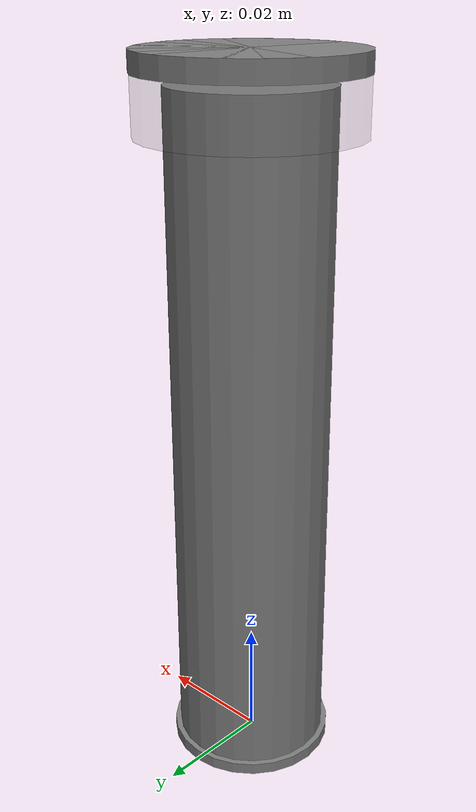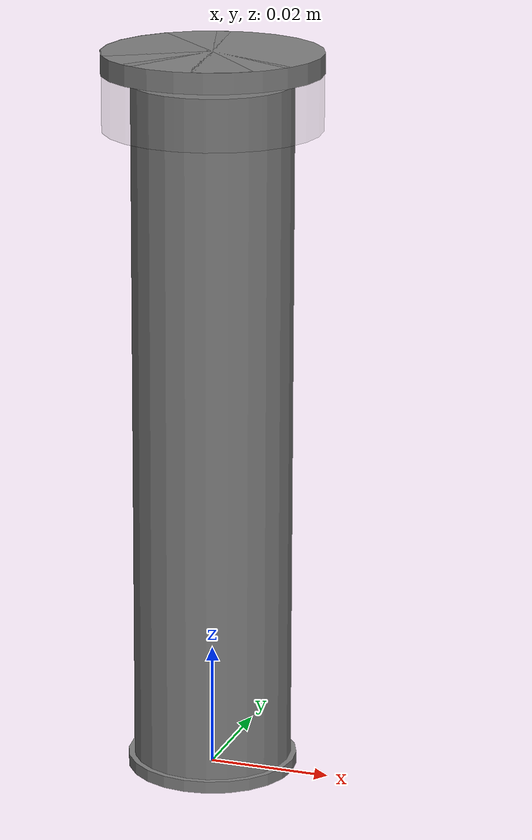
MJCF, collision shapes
<?xml version="1.0" encoding="utf-8"?>
<mujoco model="centrifuge_50ml_screw">
  <compiler angle="radian" meshdir="../../assets" />

  <option integrator="implicitfast" impratio="1" cone="elliptic" noslip_iterations="2" />

  <asset>
    <mesh name="centrifuge_50ml_screw_body-visual" file="container/centrifuge_50ml_screw_vis/centrifuge_tube_50ml_body.STL" scale="0.001 0.001 0.001" />
    <mesh name="centrifuge_50ml_screw_cap-visual" file="container/centrifuge_50ml_screw_vis/centrifuge_tube_50ml_cap.STL" scale="0.001 0.001 0.001" />
  </asset>

  <visual>
        <global azimuth="220" elevation="0"/>
  </visual>

  <worldbody>
    <!-- Body -->
    <body name="centrifuge_50ml_screw_body">
      <!-- 直接使用rgba替代material -->
      <geom name="centrifuge_50ml_screw_body-visual" type="mesh" group="2" density="0" contype="0" conaffinity="0"
            mesh="centrifuge_50ml_screw_body-visual" rgba="1 1 1 0.2" />
      <geom type="cylinder" size="0.01397 0.0010000000000000009" pos="0 0 0.0010000000000000009" group="3" friction="1.6 0.06 0.008" />
      <geom name="body_cyl" type="cylinder" size="0.013 0.057325" pos="0 0 0.057325" group="5"
            contype="0" conaffinity="0" density="0"/>
    </body>

    <!-- Cap -->
    <body name="centrifuge_50ml_screw_cap" pos="0 0 0.11965" euler="3.1415926535 0 0">
      <!-- 直接使用rgba替代material -->
      <geom type="mesh" group="2" density="0" contype="0" conaffinity="0"
            mesh="centrifuge_50ml_screw_cap-visual" rgba="0.9294 0.2706 0.0627 1" />
      <!-- 移除插件相关的geom -->
      <geom name="cap_cyl" type="cylinder" size="0.0176 0.0062" pos="0 0 0.0062" group="5"
            contype="0" conaffinity="0" margin="0.001" rgba="0.5 0.5 0.5 0.2"/>
      <geom type="cylinder" size="0.01775 0.0016700000000000005" pos="0 0 0.0016700000000000005" group="3" friction="1.6 0.06 0.008" />
    </body>
  </worldbody>
</mujoco>
